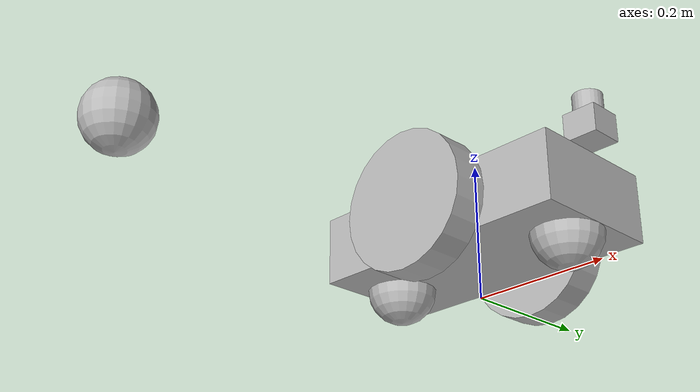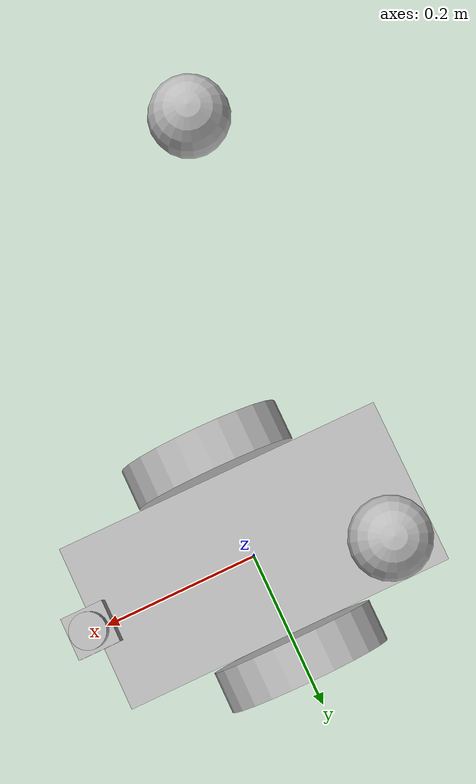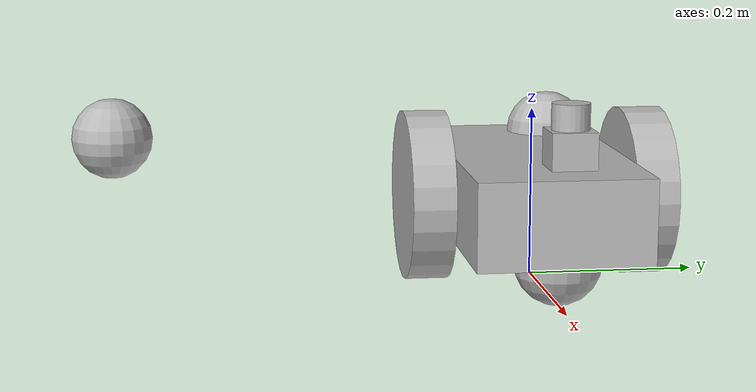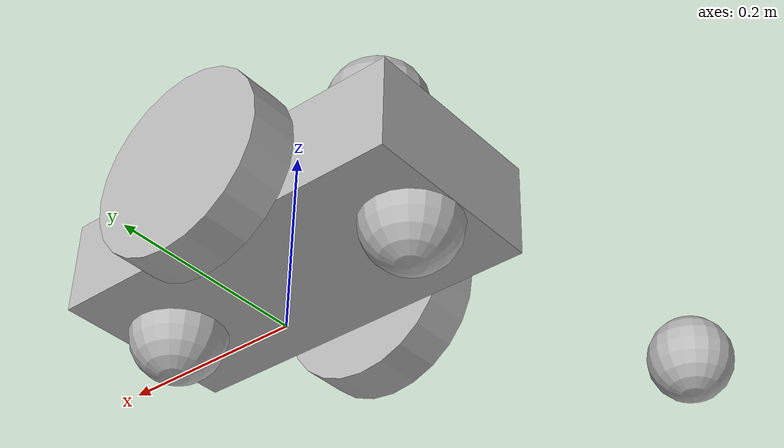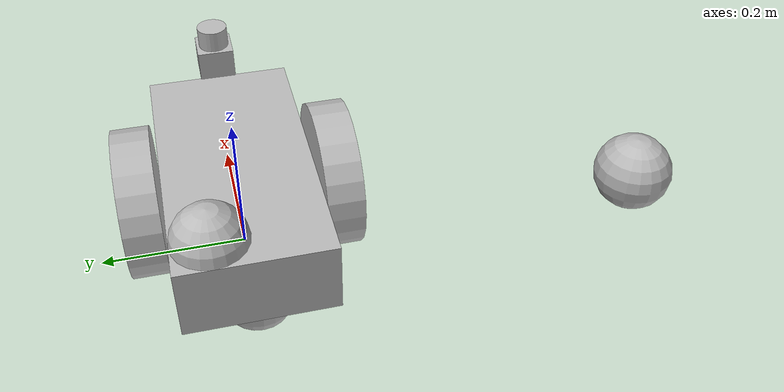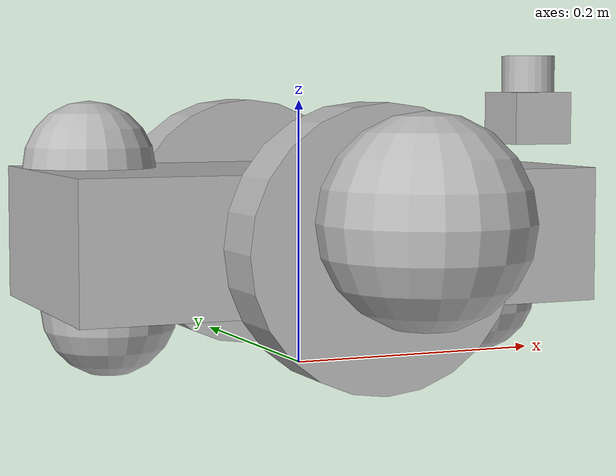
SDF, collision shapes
<?xml version='1.0'?>
<sdf version='1.7'>
  <model name='test_vh'>
    <link name='chassis'>
      <pose>-0 0 0.1 0 -0 0</pose>
      <self_collide>0</self_collide>
      <inertial>
        <pose>0 0 0 0 -0 0</pose>
        <inertia>
          <ixx>1</ixx>
          <ixy>0</ixy>
          <ixz>0</ixz>
          <iyy>1</iyy>
          <iyz>0</iyz>
          <izz>1</izz>
        </inertia>
        <mass>1</mass>
      </inertial>
      <enable_wind>0</enable_wind>
      <kinematic>0</kinematic>
      <visual name='visual'>
        <geometry>
          <box>
            <size>0.4 0.2 0.1</size>
          </box>
        </geometry>
        <material>
          <shader type='pixel'/>
        </material>
        <pose>0 0 0 0 -0 0</pose>
        <transparency>0</transparency>
        <cast_shadows>1</cast_shadows>
      </visual>
      <visual name='left_top_caster_visual'>
        <pose>-0.15 -0.05 0.05 0 -0 0</pose>
        <geometry>
          <sphere>
            <radius>0.05</radius>
          </sphere>
        </geometry>
        <material>
          <shader type='pixel'/>
        </material>
        <transparency>0</transparency>
        <cast_shadows>1</cast_shadows>
      </visual>
      <visual name='right_top_caster_visual'>
        <pose>-0.15 0.05 0.05 0 -0 0</pose>
        <geometry>
          <sphere>
            <radius>0.05</radius>
          </sphere>
        </geometry>
        <material>
          <shader type='pixel'/>
        </material>
        <transparency>0</transparency>
        <cast_shadows>1</cast_shadows>
      </visual>
      <visual name='back_caster_visual'>
        <pose>-0.15 0 -0.05 0 -0 0</pose>
        <geometry>
          <sphere>
            <radius>0.05</radius>
          </sphere>
        </geometry>
        <material>
          <shader type='pixel'/>
        </material>
        <transparency>0</transparency>
        <cast_shadows>1</cast_shadows>
      </visual>
      <visual name='front_caster_visual'>
        <pose>0.15 0 -0.05 0 -0 0</pose>
        <geometry>
          <sphere>
            <radius>0.05</radius>
          </sphere>
        </geometry>
        <material>
          <shader type='pixel'/>
        </material>
        <transparency>0</transparency>
        <cast_shadows>1</cast_shadows>
      </visual>
      <collision name='collision'>
        <laser_retro>0</laser_retro>
        <max_contacts>10</max_contacts>
        <pose>0 0 0 0 -0 0</pose>
        <geometry>
          <box>
            <size>0.4 0.2 0.1</size>
          </box>
        </geometry>
        <surface>
          <friction>
            <ode>
              <mu>1</mu>
              <mu2>1</mu2>
              <fdir1>0 0 0</fdir1>
              <slip1>0</slip1>
              <slip2>0</slip2>
            </ode>
            <torsional>
              <coefficient>1</coefficient>
              <patch_radius>0</patch_radius>
              <surface_radius>0</surface_radius>
              <use_patch_radius>1</use_patch_radius>
              <ode>
                <slip>0</slip>
              </ode>
            </torsional>
          </friction>
          <bounce>
            <restitution_coefficient>0</restitution_coefficient>
            <threshold>1e+06</threshold>
          </bounce>
          <contact>
            <collide_without_contact>0</collide_without_contact>
            <collide_without_contact_bitmask>1</collide_without_contact_bitmask>
            <collide_bitmask>1</collide_bitmask>
            <ode>
              <soft_cfm>0</soft_cfm>
              <soft_erp>0.2</soft_erp>
              <kp>1e+13</kp>
              <kd>1</kd>
              <max_vel>0.01</max_vel>
              <min_depth>0</min_depth>
            </ode>
            <bullet>
              <split_impulse>1</split_impulse>
              <split_impulse_penetration_threshold>-0.01</split_impulse_penetration_threshold>
              <soft_cfm>0</soft_cfm>
              <soft_erp>0.2</soft_erp>
              <kp>1e+13</kp>
              <kd>1</kd>
            </bullet>
          </contact>
        </surface>
      </collision>
      <collision name='left_top_caster_collision'>
        <laser_retro>0</laser_retro>
        <max_contacts>10</max_contacts>
        <pose>-0.15 -0.5 0.05 0 -0 0</pose>
        <geometry>
          <sphere>
            <radius>0.05</radius>
          </sphere>
        </geometry>
        <surface>
          <friction>
            <ode>
              <mu>0</mu>
              <mu2>0</mu2>
              <fdir1>0 0 0</fdir1>
              <slip1>1</slip1>
              <slip2>1</slip2>
            </ode>
            <torsional>
              <coefficient>1</coefficient>
              <patch_radius>0</patch_radius>
              <surface_radius>0</surface_radius>
              <use_patch_radius>1</use_patch_radius>
              <ode>
                <slip>0</slip>
              </ode>
            </torsional>
          </friction>
          <bounce>
            <restitution_coefficient>0</restitution_coefficient>
            <threshold>1e+06</threshold>
          </bounce>
          <contact>
            <collide_without_contact>0</collide_without_contact>
            <collide_without_contact_bitmask>1</collide_without_contact_bitmask>
            <collide_bitmask>1</collide_bitmask>
            <ode>
              <soft_cfm>0</soft_cfm>
              <soft_erp>0.2</soft_erp>
              <kp>1e+13</kp>
              <kd>1</kd>
              <max_vel>0.01</max_vel>
              <min_depth>0</min_depth>
            </ode>
            <bullet>
              <split_impulse>1</split_impulse>
              <split_impulse_penetration_threshold>-0.01</split_impulse_penetration_threshold>
              <soft_cfm>0</soft_cfm>
              <soft_erp>0.2</soft_erp>
              <kp>1e+13</kp>
              <kd>1</kd>
            </bullet>
          </contact>
        </surface>
      </collision>
      <collision name='right_top_caster_collision'>
        <laser_retro>0</laser_retro>
        <max_contacts>10</max_contacts>
        <pose>-0.15 0.05 0.05 0 -0 0</pose>
        <geometry>
          <sphere>
            <radius>0.05</radius>
          </sphere>
        </geometry>
        <surface>
          <friction>
            <ode>
              <mu>0</mu>
              <mu2>0</mu2>
              <fdir1>0 0 0</fdir1>
              <slip1>1</slip1>
              <slip2>1</slip2>
            </ode>
            <torsional>
              <coefficient>1</coefficient>
              <patch_radius>0</patch_radius>
              <surface_radius>0</surface_radius>
              <use_patch_radius>1</use_patch_radius>
              <ode>
                <slip>0</slip>
              </ode>
            </torsional>
          </friction>
          <bounce>
            <restitution_coefficient>0</restitution_coefficient>
            <threshold>1e+06</threshold>
          </bounce>
          <contact>
            <collide_without_contact>0</collide_without_contact>
            <collide_without_contact_bitmask>1</collide_without_contact_bitmask>
            <collide_bitmask>1</collide_bitmask>
            <ode>
              <soft_cfm>0</soft_cfm>
              <soft_erp>0.2</soft_erp>
              <kp>1e+13</kp>
              <kd>1</kd>
              <max_vel>0.01</max_vel>
              <min_depth>0</min_depth>
            </ode>
            <bullet>
              <split_impulse>1</split_impulse>
              <split_impulse_penetration_threshold>-0.01</split_impulse_penetration_threshold>
              <soft_cfm>0</soft_cfm>
              <soft_erp>0.2</soft_erp>
              <kp>1e+13</kp>
              <kd>1</kd>
            </bullet>
          </contact>
        </surface>
      </collision>
      <collision name='back_caster_collision'>
        <laser_retro>0</laser_retro>
        <max_contacts>10</max_contacts>
        <pose>-0.15 0 -0.05 0 -0 0</pose>
        <geometry>
          <sphere>
            <radius>0.05</radius>
          </sphere>
        </geometry>
        <surface>
          <friction>
            <ode>
              <mu>0</mu>
              <mu2>0</mu2>
              <fdir1>0 0 0</fdir1>
              <slip1>1</slip1>
              <slip2>1</slip2>
            </ode>
            <torsional>
              <coefficient>1</coefficient>
              <patch_radius>0</patch_radius>
              <surface_radius>0</surface_radius>
              <use_patch_radius>1</use_patch_radius>
              <ode>
                <slip>0</slip>
              </ode>
            </torsional>
          </friction>
          <bounce>
            <restitution_coefficient>0</restitution_coefficient>
            <threshold>1e+06</threshold>
          </bounce>
          <contact>
            <collide_without_contact>0</collide_without_contact>
            <collide_without_contact_bitmask>1</collide_without_contact_bitmask>
            <collide_bitmask>1</collide_bitmask>
            <ode>
              <soft_cfm>0</soft_cfm>
              <soft_erp>0.2</soft_erp>
              <kp>1e+13</kp>
              <kd>1</kd>
              <max_vel>0.01</max_vel>
              <min_depth>0</min_depth>
            </ode>
            <bullet>
              <split_impulse>1</split_impulse>
              <split_impulse_penetration_threshold>-0.01</split_impulse_penetration_threshold>
              <soft_cfm>0</soft_cfm>
              <soft_erp>0.2</soft_erp>
              <kp>1e+13</kp>
              <kd>1</kd>
            </bullet>
          </contact>
        </surface>
      </collision>
      <collision name='front_caster_collision'>
        <laser_retro>0</laser_retro>
        <max_contacts>10</max_contacts>
        <pose>0.15 0 -0.05 0 -0 0</pose>
        <geometry>
          <sphere>
            <radius>0.05</radius>
          </sphere>
        </geometry>
        <surface>
          <friction>
            <ode>
              <mu>0</mu>
              <mu2>0</mu2>
              <fdir1>0 0 0</fdir1>
              <slip1>1</slip1>
              <slip2>1</slip2>
            </ode>
            <torsional>
              <coefficient>1</coefficient>
              <patch_radius>0</patch_radius>
              <surface_radius>0</surface_radius>
              <use_patch_radius>1</use_patch_radius>
              <ode>
                <slip>0</slip>
              </ode>
            </torsional>
          </friction>
          <bounce>
            <restitution_coefficient>0</restitution_coefficient>
            <threshold>1e+06</threshold>
          </bounce>
          <contact>
            <collide_without_contact>0</collide_without_contact>
            <collide_without_contact_bitmask>1</collide_without_contact_bitmask>
            <collide_bitmask>1</collide_bitmask>
            <ode>
              <soft_cfm>0</soft_cfm>
              <soft_erp>0.2</soft_erp>
              <kp>1e+13</kp>
              <kd>1</kd>
              <max_vel>0.01</max_vel>
              <min_depth>0</min_depth>
            </ode>
            <bullet>
              <split_impulse>1</split_impulse>
              <split_impulse_penetration_threshold>-0.01</split_impulse_penetration_threshold>
              <soft_cfm>0</soft_cfm>
              <soft_erp>0.2</soft_erp>
              <kp>1e+13</kp>
              <kd>1</kd>
            </bullet>
          </contact>
        </surface>
      </collision>
    </link>
    <link name='hokuyo::link'>
      <inertial>
        <mass>0.1</mass>
        <pose>0 0 0 0 -0 0</pose>
        <inertia>
          <ixx>1</ixx>
          <ixy>0</ixy>
          <ixz>0</ixz>
          <iyy>1</iyy>
          <iyz>0</iyz>
          <izz>1</izz>
        </inertia>
      </inertial>
      <sensor name='laser' type='ray'>
        <pose>0.01 0 0.0175 0 -0 0</pose>
        <ray>
          <scan>
            <horizontal>
              <samples>640</samples>
              <resolution>1</resolution>
              <min_angle>-2.26889</min_angle>
              <max_angle>2.2689</max_angle>
            </horizontal>
            <vertical>
              <samples>1</samples>
              <min_angle>0</min_angle>
              <max_angle>0</max_angle>
            </vertical>
          </scan>
          <range>
            <min>0.08</min>
            <max>10</max>
            <resolution>0.01</resolution>
          </range>
        </ray>
        <plugin name='laser' filename='libRayPlugin.so'/>
        <always_on>1</always_on>
        <update_rate>30</update_rate>
        <visualize>1</visualize>
      </sensor>
      <pose>0.2 0 0.2 0 -0 0</pose>
      <self_collide>0</self_collide>
      <enable_wind>0</enable_wind>
      <kinematic>0</kinematic>
      <visual name='visual'>
        <geometry>
          <mesh>
            <uri>model://hokuyo/meshes/hokuyo.dae</uri>
          </mesh>
        </geometry>
        <material>
          <shader type='pixel'/>
        </material>
        <pose>0 0 0 0 -0 0</pose>
        <transparency>0</transparency>
        <cast_shadows>1</cast_shadows>
      </visual>
      <collision name='collision-base'>
        <laser_retro>0</laser_retro>
        <max_contacts>10</max_contacts>
        <pose>0 0 -0.0145 0 -0 0</pose>
        <geometry>
          <box>
            <size>0.05 0.05 0.041</size>
          </box>
        </geometry>
        <surface>
          <friction>
            <ode>
              <mu>1</mu>
              <mu2>1</mu2>
              <fdir1>0 0 0</fdir1>
              <slip1>0</slip1>
              <slip2>0</slip2>
            </ode>
            <torsional>
              <coefficient>1</coefficient>
              <patch_radius>0</patch_radius>
              <surface_radius>0</surface_radius>
              <use_patch_radius>1</use_patch_radius>
              <ode>
                <slip>0</slip>
              </ode>
            </torsional>
          </friction>
          <bounce>
            <restitution_coefficient>0</restitution_coefficient>
            <threshold>1e+06</threshold>
          </bounce>
          <contact>
            <collide_without_contact>0</collide_without_contact>
            <collide_without_contact_bitmask>1</collide_without_contact_bitmask>
            <collide_bitmask>1</collide_bitmask>
            <ode>
              <soft_cfm>0</soft_cfm>
              <soft_erp>0.2</soft_erp>
              <kp>1e+13</kp>
              <kd>1</kd>
              <max_vel>0.01</max_vel>
              <min_depth>0</min_depth>
            </ode>
            <bullet>
              <split_impulse>1</split_impulse>
              <split_impulse_penetration_threshold>-0.01</split_impulse_penetration_threshold>
              <soft_cfm>0</soft_cfm>
              <soft_erp>0.2</soft_erp>
              <kp>1e+13</kp>
              <kd>1</kd>
            </bullet>
          </contact>
        </surface>
      </collision>
      <collision name='collision-top'>
        <laser_retro>0</laser_retro>
        <max_contacts>10</max_contacts>
        <pose>0 0 0.0205 0 -0 0</pose>
        <geometry>
          <cylinder>
            <radius>0.021</radius>
            <length>0.029</length>
          </cylinder>
        </geometry>
        <surface>
          <friction>
            <ode>
              <mu>1</mu>
              <mu2>1</mu2>
              <fdir1>0 0 0</fdir1>
              <slip1>0</slip1>
              <slip2>0</slip2>
            </ode>
            <torsional>
              <coefficient>1</coefficient>
              <patch_radius>0</patch_radius>
              <surface_radius>0</surface_radius>
              <use_patch_radius>1</use_patch_radius>
              <ode>
                <slip>0</slip>
              </ode>
            </torsional>
          </friction>
          <bounce>
            <restitution_coefficient>0</restitution_coefficient>
            <threshold>1e+06</threshold>
          </bounce>
          <contact>
            <collide_without_contact>0</collide_without_contact>
            <collide_without_contact_bitmask>1</collide_without_contact_bitmask>
            <collide_bitmask>1</collide_bitmask>
            <ode>
              <soft_cfm>0</soft_cfm>
              <soft_erp>0.2</soft_erp>
              <kp>1e+13</kp>
              <kd>1</kd>
              <max_vel>0.01</max_vel>
              <min_depth>0</min_depth>
            </ode>
            <bullet>
              <split_impulse>1</split_impulse>
              <split_impulse_penetration_threshold>-0.01</split_impulse_penetration_threshold>
              <soft_cfm>0</soft_cfm>
              <soft_erp>0.2</soft_erp>
              <kp>1e+13</kp>
              <kd>1</kd>
            </bullet>
          </contact>
        </surface>
      </collision>
    </link>
    <link name='left_wheel'>
      <pose>0 0.13 0.1 0.000145 1.5707 1.57085</pose>
      <self_collide>0</self_collide>
      <inertial>
        <pose>0 0 0 0 -0 0</pose>
        <inertia>
          <ixx>1</ixx>
          <ixy>0</ixy>
          <ixz>0</ixz>
          <iyy>1</iyy>
          <iyz>0</iyz>
          <izz>1</izz>
        </inertia>
        <mass>1</mass>
      </inertial>
      <enable_wind>0</enable_wind>
      <kinematic>0</kinematic>
      <visual name='visual'>
        <geometry>
          <cylinder>
            <radius>0.1</radius>
            <length>0.05</length>
          </cylinder>
        </geometry>
        <material>
          <shader type='pixel'/>
        </material>
        <pose>0 0 0 0 -0 0</pose>
        <transparency>0</transparency>
        <cast_shadows>1</cast_shadows>
      </visual>
      <collision name='collision'>
        <laser_retro>0</laser_retro>
        <max_contacts>10</max_contacts>
        <pose>0 0 0 0 -0 0</pose>
        <geometry>
          <cylinder>
            <radius>0.1</radius>
            <length>0.05</length>
          </cylinder>
        </geometry>
        <surface>
          <friction>
            <ode>
              <mu>1</mu>
              <mu2>1</mu2>
              <fdir1>0 0 0</fdir1>
              <slip1>0</slip1>
              <slip2>0</slip2>
            </ode>
            <torsional>
              <coefficient>1</coefficient>
              <patch_radius>0</patch_radius>
              <surface_radius>0</surface_radius>
              <use_patch_radius>1</use_patch_radius>
              <ode>
                <slip>0</slip>
              </ode>
            </torsional>
          </friction>
          <bounce>
            <restitution_coefficient>0</restitution_coefficient>
            <threshold>1e+06</threshold>
          </bounce>
          <contact>
            <collide_without_contact>0</collide_without_contact>
            <collide_without_contact_bitmask>1</collide_without_contact_bitmask>
            <collide_bitmask>1</collide_bitmask>
            <ode>
              <soft_cfm>0</soft_cfm>
              <soft_erp>0.2</soft_erp>
              <kp>1e+13</kp>
              <kd>1</kd>
              <max_vel>0.01</max_vel>
              <min_depth>0</min_depth>
            </ode>
            <bullet>
              <split_impulse>1</split_impulse>
              <split_impulse_penetration_threshold>-0.01</split_impulse_penetration_threshold>
              <soft_cfm>0</soft_cfm>
              <soft_erp>0.2</soft_erp>
              <kp>1e+13</kp>
              <kd>1</kd>
            </bullet>
          </contact>
        </surface>
      </collision>
    </link>
    <link name='right_wheel'>
      <pose>0 -0.13 0.1 0.000145 1.5707 1.57085</pose>
      <self_collide>0</self_collide>
      <inertial>
        <pose>0 0 0 0 -0 0</pose>
        <inertia>
          <ixx>1</ixx>
          <ixy>0</ixy>
          <ixz>0</ixz>
          <iyy>1</iyy>
          <iyz>0</iyz>
          <izz>1</izz>
        </inertia>
        <mass>1</mass>
      </inertial>
      <enable_wind>0</enable_wind>
      <kinematic>0</kinematic>
      <visual name='visual'>
        <geometry>
          <cylinder>
            <radius>0.1</radius>
            <length>0.05</length>
          </cylinder>
        </geometry>
        <material>
          <shader type='pixel'/>
        </material>
        <pose>0 0 0 0 -0 0</pose>
        <transparency>0</transparency>
        <cast_shadows>1</cast_shadows>
      </visual>
      <collision name='collision'>
        <laser_retro>0</laser_retro>
        <max_contacts>10</max_contacts>
        <pose>0 0 0 0 -0 0</pose>
        <geometry>
          <cylinder>
            <radius>0.1</radius>
            <length>0.05</length>
          </cylinder>
        </geometry>
        <surface>
          <friction>
            <ode>
              <mu>1</mu>
              <mu2>1</mu2>
              <fdir1>0 0 0</fdir1>
              <slip1>0</slip1>
              <slip2>0</slip2>
            </ode>
            <torsional>
              <coefficient>1</coefficient>
              <patch_radius>0</patch_radius>
              <surface_radius>0</surface_radius>
              <use_patch_radius>1</use_patch_radius>
              <ode>
                <slip>0</slip>
              </ode>
            </torsional>
          </friction>
          <bounce>
            <restitution_coefficient>0</restitution_coefficient>
            <threshold>1e+06</threshold>
          </bounce>
          <contact>
            <collide_without_contact>0</collide_without_contact>
            <collide_without_contact_bitmask>1</collide_without_contact_bitmask>
            <collide_bitmask>1</collide_bitmask>
            <ode>
              <soft_cfm>0</soft_cfm>
              <soft_erp>0.2</soft_erp>
              <kp>1e+13</kp>
              <kd>1</kd>
              <max_vel>0.01</max_vel>
              <min_depth>0</min_depth>
            </ode>
            <bullet>
              <split_impulse>1</split_impulse>
              <split_impulse_penetration_threshold>-0.01</split_impulse_penetration_threshold>
              <soft_cfm>0</soft_cfm>
              <soft_erp>0.2</soft_erp>
              <kp>1e+13</kp>
              <kd>1</kd>
            </bullet>
          </contact>
        </surface>
      </collision>
    </link>
    <joint name='hokuyo_joint' type='fixed'>
      <parent>chassis</parent>
      <child>hokuyo::link</child>
      <pose>0 0 0 0 -0 0</pose>
      <physics>
        <ode>
          <limit>
            <cfm>0</cfm>
            <erp>0.2</erp>
          </limit>
          <suspension>
            <cfm>0</cfm>
            <erp>0.2</erp>
          </suspension>
        </ode>
      </physics>
    </joint>
    <joint name='left_wheel_hinge' type='revolute'>
      <parent>chassis</parent>
      <child>left_wheel</child>
      <pose>0 0 -0.03 0 -0 0</pose>
      <axis>
        <xyz>0 0 1</xyz>
        <limit>
          <lower>-1e+16</lower>
          <upper>1e+16</upper>
          <effort>-1</effort>
          <velocity>-1</velocity>
        </limit>
        <dynamics>
          <spring_reference>0</spring_reference>
          <spring_stiffness>0</spring_stiffness>
          <damping>0</damping>
          <friction>0</friction>
        </dynamics>
      </axis>
      <physics>
        <ode>
          <limit>
            <cfm>0</cfm>
            <erp>0.2</erp>
          </limit>
          <suspension>
            <cfm>0</cfm>
            <erp>0.2</erp>
          </suspension>
        </ode>
      </physics>
    </joint>
    <joint name='right_wheel_hinge' type='revolute'>
      <parent>chassis</parent>
      <child>right_wheel</child>
      <pose>0 0 0.03 0 -0 0</pose>
      <axis>
        <xyz>0 0 1</xyz>
        <limit>
          <lower>-1e+16</lower>
          <upper>1e+16</upper>
          <effort>-1</effort>
          <velocity>-1</velocity>
        </limit>
        <dynamics>
          <spring_reference>0</spring_reference>
          <spring_stiffness>0</spring_stiffness>
          <damping>0</damping>
          <friction>0</friction>
        </dynamics>
      </axis>
      <physics>
        <ode>
          <limit>
            <cfm>0</cfm>
            <erp>0.2</erp>
          </limit>
          <suspension>
            <cfm>0</cfm>
            <erp>0.2</erp>
          </suspension>
        </ode>
      </physics>
    </joint>
    <static>0</static>
    <allow_auto_disable>1</allow_auto_disable>
    <plugin name='follower' filename='libFollowerPlugin.so'/>
  </model>
</sdf>
